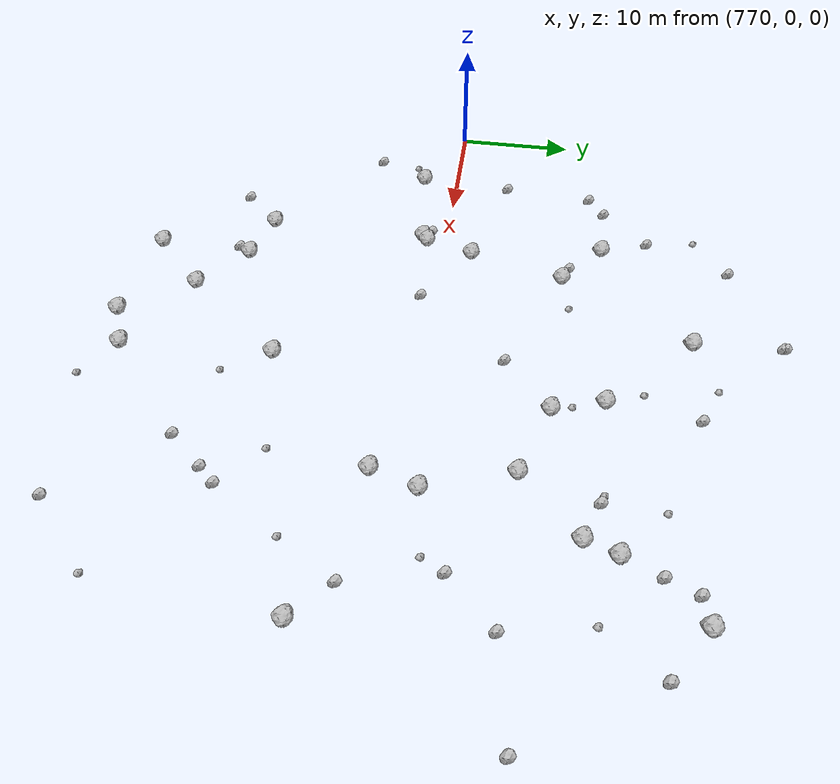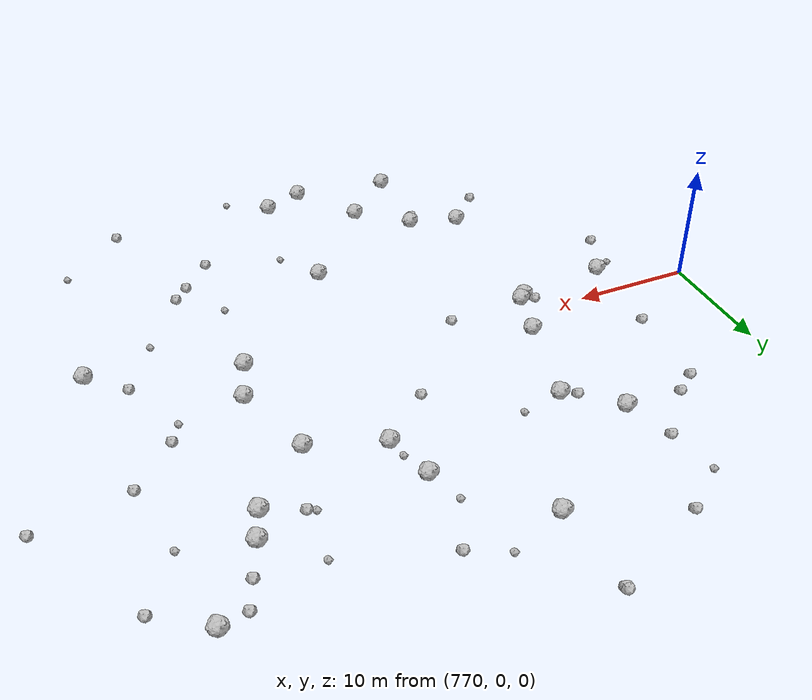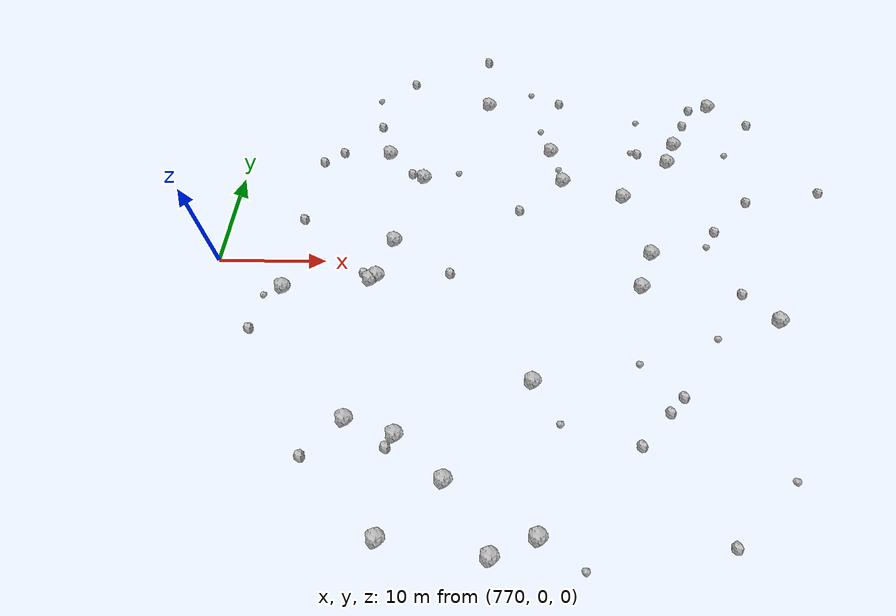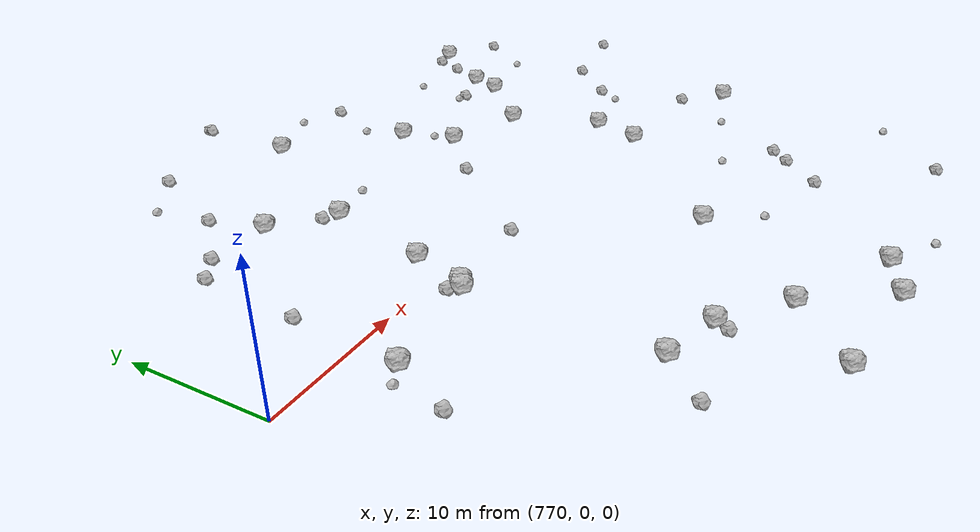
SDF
<sdf version="1.6">
 <world name="default">
  <include><uri>model://sun</uri></include>
  <model name="rock1_20_4">
   <include><uri>model://rock1</uri><pose>812.9634517421923 12.83808970422475 0.5 0 0 0</pose></include>
  </model>
  <model name="rock1_20_5">
   <include><uri>model://rock1</uri><pose>788.6090235288027 -16.942693579940173 0.5 0 0 0</pose></include>
  </model>
  <model name="rock1_20_6">
   <include><uri>model://rock1</uri><pose>818.1679157476941 21.192974436657174 0.5 0 0 0</pose></include>
  </model>
  <model name="rock1_20_7">
   <include><uri>model://rock1</uri><pose>784.408615720641 -15.687233558064813 0.5 0 0 0</pose></include>
  </model>
  <model name="rock1_20_8">
   <include><uri>model://rock1</uri><pose>788.2439766159006 -24.910330467268178 0.5 0 0 0</pose></include>
  </model>
  <model name="rock1_20_9">
   <include><uri>model://rock1</uri><pose>809.2553391075357 -2.573676850402176 0.5 0 0 0</pose></include>
  </model>
  <model name="rock1_20_10">
   <include><uri>model://rock1</uri><pose>796.6207217506163 -26.035516998562386 0.5 0 0 0</pose></include>
  </model>
  <model name="rock1_20_11">
   <include><uri>model://rock1</uri><pose>788.2088499744865 10.34009833671174 0.5 0 0 0</pose></include>
  </model>
  <model name="rock1_20_12">
   <include><uri>model://rock1</uri><pose>799.5109167943078 -12.137544445524647 0.5 0 0 0</pose></include>
  </model>
  <model name="rock1_20_13">
   <include><uri>model://rock1</uri><pose>794.2862620713431 21.09167481281385 0.5 0 0 0</pose></include>
  </model>
  <model name="rock1_20_14">
   <include><uri>model://rock1</uri><pose>784.5225306481769 -2.163066492644578 0.5 0 0 0</pose></include>
  </model>
  <model name="rock1_20_15">
   <include><uri>model://rock1</uri><pose>786.1892203164032 2.3459655415699245 0.5 0 0 0</pose></include>
  </model>
  <model name="rock1_20_16">
   <include><uri>model://rock1</uri><pose>800.0951817874378 -24.610337945814248 0.5 0 0 0</pose></include>
  </model>
  <model name="rock1_20_17">
   <include><uri>model://rock1</uri><pose>810.4212953489468 1.1729549696746808 0.5 0 0 0</pose></include>
  </model>
  <model name="rock1_20_18">
   <include><uri>model://rock1</uri><pose>801.0266036487802 14.247401819918686 0.5 0 0 0</pose></include>
  </model>
  <model name="rock1_20_19">
   <include><uri>model://rock1</uri><pose>808.1663652407649 8.084262365026824 0.5 0 0 0</pose></include>
  </model>
  <model name="rock1_20_20">
   <include><uri>model://rock1</uri><pose>776.7194023426039 -3.0982182626266024 0.5 0 0 0</pose></include>
  </model>
  <model name="rock1_20_21">
   <include><uri>model://rock1</uri><pose>813.868025816766 15.351954468090632 0.5 0 0 0</pose></include>
  </model>
  <model name="rock1_20_22">
   <include><uri>model://rock1</uri><pose>821.1259634145684 -5.951502814124019 0.5 0 0 0</pose></include>
  </model>
  <model name="rock1_20_23">
   <include><uri>model://rock1</uri><pose>802.2167325638318 10.129682632204023 0.5 0 0 0</pose></include>
  </model>
  <model name="rock1_20_24">
   <include><uri>model://rock1</uri><pose>785.0587483831265 -1.71720201995387 0.5 0 0 0</pose></include>
  </model>
  <model name="rock1_20_25">
   <include><uri>model://rock1</uri><pose>784.3767267982154 13.617595936497402 0.5 0 0 0</pose></include>
  </model>
  <model name="rock1_20_26">
   <include><uri>model://rock1</uri><pose>792.7984118785416 -20.488959988000843 0.5 0 0 0</pose></include>
  </model>
  <model name="rock2_20_0">
   <include><uri>model://rock2</uri><pose>779.5644407653995 13.763554183430365 0.3 0 0 0</pose></include>
  </model>
  <model name="rock2_20_1">
   <include><uri>model://rock2</uri><pose>793.84814919159 28.48023314576389 0.3 0 0 0</pose></include>
  </model>
  <model name="rock2_20_2">
   <include><uri>model://rock2</uri><pose>777.7175778971837 12.39278676726422 0.3 0 0 0</pose></include>
  </model>
  <model name="rock2_20_3">
   <include><uri>model://rock2</uri><pose>797.9489636279051 6.274544060339835 0.3 0 0 0</pose></include>
  </model>
  <model name="rock2_20_4">
   <include><uri>model://rock2</uri><pose>818.2140920289245 -3.159240059019009 0.3 0 0 0</pose></include>
  </model>
  <model name="rock2_20_5">
   <include><uri>model://rock2</uri><pose>787.9868225921136 -17.97105028088332 0.3 0 0 0</pose></include>
  </model>
  <model name="rock2_20_6">
   <include><uri>model://rock2</uri><pose>809.957586348133 14.08343669474823 0.3 0 0 0</pose></include>
  </model>
  <model name="rock2_20_7">
   <include><uri>model://rock2</uri><pose>810.7120308570509 -14.698309229584686 0.3 0 0 0</pose></include>
  </model>
  <model name="rock2_20_8">
   <include><uri>model://rock2</uri><pose>781.4096791924866 -18.77467550345818 0.3 0 0 0</pose></include>
  </model>
  <model name="rock2_20_9">
   <include><uri>model://rock2</uri><pose>777.1466349786917 4.818535061623315 0.3 0 0 0</pose></include>
  </model>
  <model name="rock2_20_10">
   <include><uri>model://rock2</uri><pose>783.0568282693066 17.587148590444293 0.3 0 0 0</pose></include>
  </model>
  <model name="rock2_20_11">
   <include><uri>model://rock2</uri><pose>785.8655483834248 24.47388981110649 0.3 0 0 0</pose></include>
  </model>
  <model name="rock2_20_12">
   <include><uri>model://rock2</uri><pose>816.6429732318464 3.9047543032769454 0.3 0 0 0</pose></include>
  </model>
  <model name="rock2_20_13">
   <include><uri>model://rock2</uri><pose>815.0702260477002 18.322498081315516 0.3 0 0 0</pose></include>
  </model>
  <model name="rock2_20_14">
   <include><uri>model://rock2</uri><pose>820.2327051578202 7.675029791011816 0.3 0 0 0</pose></include>
  </model>
  <model name="rock2_20_15">
   <include><uri>model://rock2</uri><pose>811.9388146652043 -13.325123382164609 0.3 0 0 0</pose></include>
  </model>
  <model name="rock2_20_16">
   <include><uri>model://rock2</uri><pose>783.8229652940629 -1.4219415719029165 0.3 0 0 0</pose></include>
  </model>
  <model name="rock2_20_17">
   <include><uri>model://rock2</uri><pose>816.0224879230517 20.709114997732947 0.3 0 0 0</pose></include>
  </model>
  <model name="rock2_20_18">
   <include><uri>model://rock2</uri><pose>793.8534945652325 28.314907885887884 0.3 0 0 0</pose></include>
  </model>
  <model name="rock2_20_19">
   <include><uri>model://rock2</uri><pose>808.2044145167916 -17.55599505814967 0.3 0 0 0</pose></include>
  </model>
  <model name="rock2_20_20">
   <include><uri>model://rock2</uri><pose>821.9935996569177 18.521362774592255 0.3 0 0 0</pose></include>
  </model>
  <model name="rock2_20_21">
   <include><uri>model://rock2</uri><pose>774.6504797453143 -7.39024547131843 0.3 0 0 0</pose></include>
  </model>
  <model name="rock2_20_22">
   <include><uri>model://rock2</uri><pose>801.8861384463628 21.528381826473982 0.3 0 0 0</pose></include>
  </model>
  <model name="rock2_20_23">
   <include><uri>model://rock2</uri><pose>786.9639712839496 10.921613589458175 0.3 0 0 0</pose></include>
  </model>
  <model name="rock2_20_24">
   <include><uri>model://rock2</uri><pose>791.7486518128904 -1.3093634592591776 0.3 0 0 0</pose></include>
  </model>
  <model name="rock2_20_25">
   <include><uri>model://rock2</uri><pose>814.514466949308 -25.12377455954927 0.3 0 0 0</pose></include>
  </model>
  <model name="rock2_20_26">
   <include><uri>model://rock2</uri><pose>827.6152757489904 9.012116032622146 0.3 0 0 0</pose></include>
  </model>
  <model name="rock3_20_0">
   <include><uri>model://rock3</uri><pose>803.5109470979774 -26.906812658396763 0.2 0 0 0</pose></include>
  </model>
  <model name="rock3_20_1">
   <include><uri>model://rock3</uri><pose>782.2959559823022 21.69665784946958 0.2 0 0 0</pose></include>
  </model>
  <model name="rock3_20_2">
   <include><uri>model://rock3</uri><pose>775.0940041056732 -3.901334631819598 0.2 0 0 0</pose></include>
  </model>
  <model name="rock3_20_3">
   <include><uri>model://rock3</uri><pose>801.7624799259859 -15.837430710451311 0.2 0 0 0</pose></include>
  </model>
  <model name="rock3_20_4">
   <include><uri>model://rock3</uri><pose>809.290483024823 14.296612851335247 0.2 0 0 0</pose></include>
  </model>
  <model name="rock3_20_5">
   <include><uri>model://rock3</uri><pose>810.127355801165 18.708381703043322 0.2 0 0 0</pose></include>
  </model>
  <model name="rock3_20_6">
   <include><uri>model://rock3</uri><pose>808.5131007806928 -10.355161573804448 0.2 0 0 0</pose></include>
  </model>
  <model name="rock3_20_7">
   <include><uri>model://rock3</uri><pose>799.92587268035 17.19716077900366 0.2 0 0 0</pose></include>
  </model>
  <model name="rock3_20_8">
   <include><uri>model://rock3</uri><pose>801.7814802759756 11.765251060522331 0.2 0 0 0</pose></include>
  </model>
  <model name="rock3_20_9">
   <include><uri>model://rock3</uri><pose>815.6766707305584 2.092078344019754 0.2 0 0 0</pose></include>
  </model>
  <model name="rock3_20_10">
   <include><uri>model://rock3</uri><pose>818.9982301583733 14.03322640863059 0.2 0 0 0</pose></include>
  </model>
  <model name="rock3_20_11">
   <include><uri>model://rock3</uri><pose>815.4461494801405 -7.821591198588468 0.2 0 0 0</pose></include>
  </model>
  <model name="rock3_20_12">
   <include><uri>model://rock3</uri><pose>819.8342414002026 -20.182887109760433 0.2 0 0 0</pose></include>
  </model>
  <model name="rock3_20_13">
   <include><uri>model://rock3</uri><pose>798.8359849524735 22.916104749340676 0.2 0 0 0</pose></include>
  </model>
  <model name="rock3_20_14">
   <include><uri>model://rock3</uri><pose>791.6213509311735 11.09585661807732 0.2 0 0 0</pose></include>
  </model>
 </world>
</sdf>
